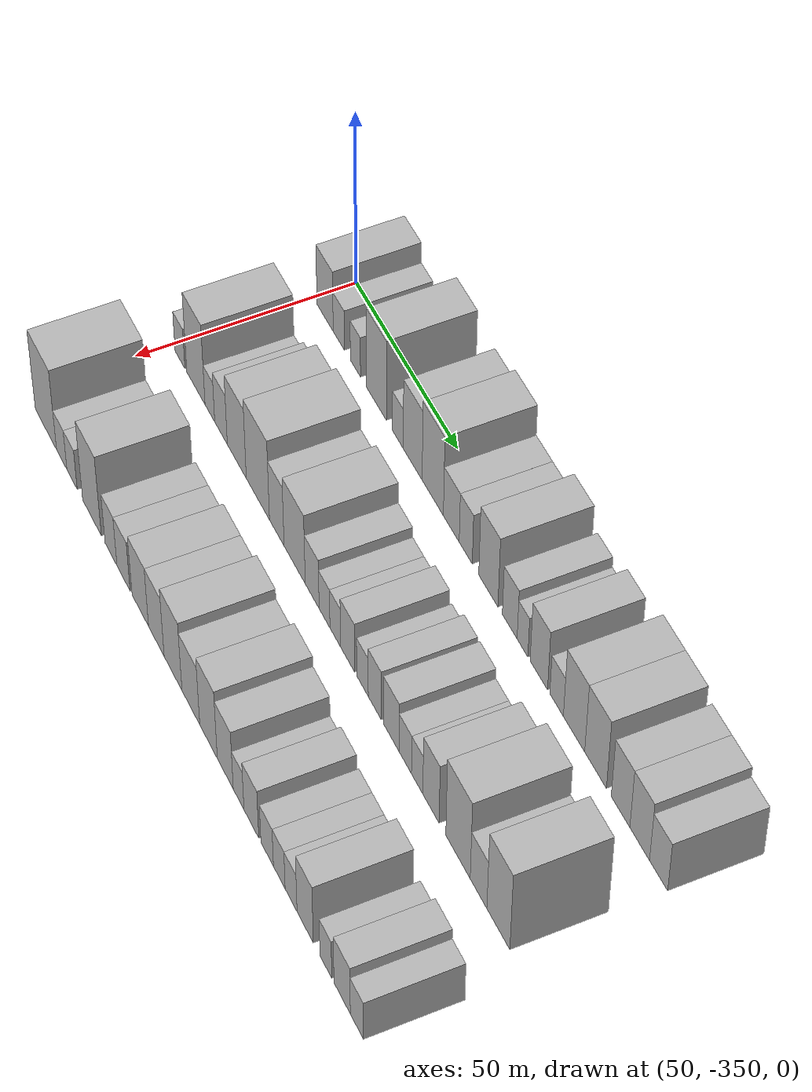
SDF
<sdf version="1.6">
 <world name="default">
  <model name="building_1">
   <static>1</static>
   <pose>50.0000 -343.8013 0 0.000000 0.000000 0.000000</pose>
   <link name="link">
    <pose>0 0 9.00 0 0 0</pose>
    <collision name="collision"><geometry><box><size>20.0000 8.3975 18.0000</size></box></geometry></collision>
    <visual name="visual">
     <cast_shadows>0</cast_shadows>
     <geometry><box><size>20.0000 8.3975 18.0000</size></box></geometry>
     <material>
      <script>
       <uri>model://HANNAS_wall/materials/scripts</uri>
       <uri>model://HANNAS_wall/materials/textures</uri>
       <name>vrc/HANNAS_wall</name>
      </script>
     </material>
    </visual>
   </link>
  </model>
  <model name="building_2">
   <static>1</static>
   <pose>50.0000 -336.7153 0 0.000000 0.000000 0.000000</pose>
   <link name="link">
    <pose>0 0 6.00 0 0 0</pose>
    <collision name="collision"><geometry><box><size>20.0000 5.7745 12.0000</size></box></geometry></collision>
    <visual name="visual">
     <cast_shadows>0</cast_shadows>
     <geometry><box><size>20.0000 5.7745 12.0000</size></box></geometry>
     <material>
      <script>
       <uri>model://HANNAS_wall/materials/scripts</uri>
       <uri>model://HANNAS_wall/materials/textures</uri>
       <name>vrc/HANNAS_wall</name>
      </script>
     </material>
    </visual>
   </link>
  </model>
  <model name="building_3">
   <static>1</static>
   <pose>50.0000 -328.2741 0 0.000000 0.000000 0.000000</pose>
   <link name="link">
    <pose>0 0 6.00 0 0 0</pose>
    <collision name="collision"><geometry><box><size>20.0000 5.1080 12.0000</size></box></geometry></collision>
    <visual name="visual">
     <cast_shadows>0</cast_shadows>
     <geometry><box><size>20.0000 5.1080 12.0000</size></box></geometry>
     <material>
      <script>
       <uri>model://HANNAS_wall/materials/scripts</uri>
       <uri>model://HANNAS_wall/materials/textures</uri>
       <name>vrc/HANNAS_wall</name>
      </script>
     </material>
    </visual>
   </link>
  </model>
  <model name="building_4">
   <static>1</static>
   <pose>50.0000 -317.7666 0 0.000000 0.000000 0.000000</pose>
   <link name="link">
    <pose>0 0 12.00 0 0 0</pose>
    <collision name="collision"><geometry><box><size>20.0000 9.9071 24.0000</size></box></geometry></collision>
    <visual name="visual">
     <cast_shadows>0</cast_shadows>
     <geometry><box><size>20.0000 9.9071 24.0000</size></box></geometry>
     <material>
      <script>
       <uri>model://HANNAS_wall/materials/scripts</uri>
       <uri>model://HANNAS_wall/materials/textures</uri>
       <name>vrc/HANNAS_wall</name>
      </script>
     </material>
    </visual>
   </link>
  </model>
  <model name="building_5">
   <static>1</static>
   <pose>50.0000 -307.1703 0 0.000000 0.000000 0.000000</pose>
   <link name="link">
    <pose>0 0 6.00 0 0 0</pose>
    <collision name="collision"><geometry><box><size>20.0000 5.2854 12.0000</size></box></geometry></collision>
    <visual name="visual">
     <cast_shadows>0</cast_shadows>
     <geometry><box><size>20.0000 5.2854 12.0000</size></box></geometry>
     <material>
      <script>
       <uri>model://HANNAS_wall/materials/scripts</uri>
       <uri>model://HANNAS_wall/materials/textures</uri>
       <name>vrc/HANNAS_wall</name>
      </script>
     </material>
    </visual>
   </link>
  </model>
  <model name="building_6">
   <static>1</static>
   <pose>50.0000 -299.9623 0 0.000000 0.000000 0.000000</pose>
   <link name="link">
    <pose>0 0 10.50 0 0 0</pose>
    <collision name="collision"><geometry><box><size>20.0000 9.1305 21.0000</size></box></geometry></collision>
    <visual name="visual">
     <cast_shadows>0</cast_shadows>
     <geometry><box><size>20.0000 9.1305 21.0000</size></box></geometry>
     <material>
      <script>
       <uri>model://HANNAS_wall/materials/scripts</uri>
       <uri>model://HANNAS_wall/materials/textures</uri>
       <name>vrc/HANNAS_wall</name>
      </script>
     </material>
    </visual>
   </link>
  </model>
  <model name="building_7">
   <static>1</static>
   <pose>50.0000 -290.3193 0 0.000000 0.000000 0.000000</pose>
   <link name="link">
    <pose>0 0 12.00 0 0 0</pose>
    <collision name="collision"><geometry><box><size>20.0000 10.1556 24.0000</size></box></geometry></collision>
    <visual name="visual">
     <cast_shadows>0</cast_shadows>
     <geometry><box><size>20.0000 10.1556 24.0000</size></box></geometry>
     <material>
      <script>
       <uri>model://HANNAS_wall/materials/scripts</uri>
       <uri>model://HANNAS_wall/materials/textures</uri>
       <name>vrc/HANNAS_wall</name>
      </script>
     </material>
    </visual>
   </link>
  </model>
  <model name="building_8">
   <static>1</static>
   <pose>50.0000 -281.5235 0 0.000000 0.000000 0.000000</pose>
   <link name="link">
    <pose>0 0 7.50 0 0 0</pose>
    <collision name="collision"><geometry><box><size>20.0000 7.4361 15.0000</size></box></geometry></collision>
    <visual name="visual">
     <cast_shadows>0</cast_shadows>
     <geometry><box><size>20.0000 7.4361 15.0000</size></box></geometry>
     <material>
      <script>
       <uri>model://HANNAS_wall/materials/scripts</uri>
       <uri>model://HANNAS_wall/materials/textures</uri>
       <name>vrc/HANNAS_wall</name>
      </script>
     </material>
    </visual>
   </link>
  </model>
  <model name="building_9">
   <static>1</static>
   <pose>50.0000 -274.7588 0 0.000000 0.000000 0.000000</pose>
   <link name="link">
    <pose>0 0 7.50 0 0 0</pose>
    <collision name="collision"><geometry><box><size>20.0000 6.0932 15.0000</size></box></geometry></collision>
    <visual name="visual">
     <cast_shadows>0</cast_shadows>
     <geometry><box><size>20.0000 6.0932 15.0000</size></box></geometry>
     <material>
      <script>
       <uri>model://HANNAS_wall/materials/scripts</uri>
       <uri>model://HANNAS_wall/materials/textures</uri>
       <name>vrc/HANNAS_wall</name>
      </script>
     </material>
    </visual>
   </link>
  </model>
  <model name="building_10">
   <static>1</static>
   <pose>50.0000 -264.3083 0 0.000000 0.000000 0.000000</pose>
   <link name="link">
    <pose>0 0 10.50 0 0 0</pose>
    <collision name="collision"><geometry><box><size>20.0000 8.8079 21.0000</size></box></geometry></collision>
    <visual name="visual">
     <cast_shadows>0</cast_shadows>
     <geometry><box><size>20.0000 8.8079 21.0000</size></box></geometry>
     <material>
      <script>
       <uri>model://HANNAS_wall/materials/scripts</uri>
       <uri>model://HANNAS_wall/materials/textures</uri>
       <name>vrc/HANNAS_wall</name>
      </script>
     </material>
    </visual>
   </link>
  </model>
  <model name="building_11">
   <static>1</static>
   <pose>50.0000 -254.5786 0 0.000000 0.000000 0.000000</pose>
   <link name="link">
    <pose>0 0 7.50 0 0 0</pose>
    <collision name="collision"><geometry><box><size>20.0000 6.6515 15.0000</size></box></geometry></collision>
    <visual name="visual">
     <cast_shadows>0</cast_shadows>
     <geometry><box><size>20.0000 6.6515 15.0000</size></box></geometry>
     <material>
      <script>
       <uri>model://HANNAS_wall/materials/scripts</uri>
       <uri>model://HANNAS_wall/materials/textures</uri>
       <name>vrc/HANNAS_wall</name>
      </script>
     </material>
    </visual>
   </link>
  </model>
  <model name="building_12">
   <static>1</static>
   <pose>50.0000 -248.8433 0 0.000000 0.000000 0.000000</pose>
   <link name="link">
    <pose>0 0 6.00 0 0 0</pose>
    <collision name="collision"><geometry><box><size>20.0000 4.8192 12.0000</size></box></geometry></collision>
    <visual name="visual">
     <cast_shadows>0</cast_shadows>
     <geometry><box><size>20.0000 4.8192 12.0000</size></box></geometry>
     <material>
      <script>
       <uri>model://HANNAS_wall/materials/scripts</uri>
       <uri>model://HANNAS_wall/materials/textures</uri>
       <name>vrc/HANNAS_wall</name>
      </script>
     </material>
    </visual>
   </link>
  </model>
  <model name="building_13">
   <static>1</static>
   <pose>50.0000 -241.5795 0 0.000000 0.000000 0.000000</pose>
   <link name="link">
    <pose>0 0 9.00 0 0 0</pose>
    <collision name="collision"><geometry><box><size>20.0000 7.7084 18.0000</size></box></geometry></collision>
    <visual name="visual">
     <cast_shadows>0</cast_shadows>
     <geometry><box><size>20.0000 7.7084 18.0000</size></box></geometry>
     <material>
      <script>
       <uri>model://HANNAS_wall/materials/scripts</uri>
       <uri>model://HANNAS_wall/materials/textures</uri>
       <name>vrc/HANNAS_wall</name>
      </script>
     </material>
    </visual>
   </link>
  </model>
  <model name="building_14">
   <static>1</static>
   <pose>50.0000 -233.7702 0 0.000000 0.000000 0.000000</pose>
   <link name="link">
    <pose>0 0 6.00 0 0 0</pose>
    <collision name="collision"><geometry><box><size>20.0000 5.9101 12.0000</size></box></geometry></collision>
    <visual name="visual">
     <cast_shadows>0</cast_shadows>
     <geometry><box><size>20.0000 5.9101 12.0000</size></box></geometry>
     <material>
      <script>
       <uri>model://HANNAS_wall/materials/scripts</uri>
       <uri>model://HANNAS_wall/materials/textures</uri>
       <name>vrc/HANNAS_wall</name>
      </script>
     </material>
    </visual>
   </link>
  </model>
  <model name="building_15">
   <static>1</static>
   <pose>50.0000 -226.2153 0 0.000000 0.000000 0.000000</pose>
   <link name="link">
    <pose>0 0 10.50 0 0 0</pose>
    <collision name="collision"><geometry><box><size>20.0000 9.1998 21.0000</size></box></geometry></collision>
    <visual name="visual">
     <cast_shadows>0</cast_shadows>
     <geometry><box><size>20.0000 9.1998 21.0000</size></box></geometry>
     <material>
      <script>
       <uri>model://HANNAS_wall/materials/scripts</uri>
       <uri>model://HANNAS_wall/materials/textures</uri>
       <name>vrc/HANNAS_wall</name>
      </script>
     </material>
    </visual>
   </link>
  </model>
  <model name="building_16">
   <static>1</static>
   <pose>50.0000 -216.9937 0 0.000000 0.000000 0.000000</pose>
   <link name="link">
    <pose>0 0 10.50 0 0 0</pose>
    <collision name="collision"><geometry><box><size>20.0000 9.2434 21.0000</size></box></geometry></collision>
    <visual name="visual">
     <cast_shadows>0</cast_shadows>
     <geometry><box><size>20.0000 9.2434 21.0000</size></box></geometry>
     <material>
      <script>
       <uri>model://HANNAS_wall/materials/scripts</uri>
       <uri>model://HANNAS_wall/materials/textures</uri>
       <name>vrc/HANNAS_wall</name>
      </script>
     </material>
    </visual>
   </link>
  </model>
  <model name="building_17">
   <static>1</static>
   <pose>50.0000 -206.4832 0 0.000000 0.000000 0.000000</pose>
   <link name="link">
    <pose>0 0 9.00 0 0 0</pose>
    <collision name="collision"><geometry><box><size>20.0000 7.7774 18.0000</size></box></geometry></collision>
    <visual name="visual">
     <cast_shadows>0</cast_shadows>
     <geometry><box><size>20.0000 7.7774 18.0000</size></box></geometry>
     <material>
      <script>
       <uri>model://HANNAS_wall/materials/scripts</uri>
       <uri>model://HANNAS_wall/materials/textures</uri>
       <name>vrc/HANNAS_wall</name>
      </script>
     </material>
    </visual>
   </link>
  </model>
  <model name="building_18">
   <static>1</static>
   <pose>50.0000 -198.5400 0 0.000000 0.000000 0.000000</pose>
   <link name="link">
    <pose>0 0 9.00 0 0 0</pose>
    <collision name="collision"><geometry><box><size>20.0000 8.1091 18.0000</size></box></geometry></collision>
    <visual name="visual">
     <cast_shadows>0</cast_shadows>
     <geometry><box><size>20.0000 8.1091 18.0000</size></box></geometry>
     <material>
      <script>
       <uri>model://HANNAS_wall/materials/scripts</uri>
       <uri>model://HANNAS_wall/materials/textures</uri>
       <name>vrc/HANNAS_wall</name>
      </script>
     </material>
    </visual>
   </link>
  </model>
  <model name="building_19">
   <static>1</static>
   <pose>50.0000 -190.7908 0 0.000000 0.000000 0.000000</pose>
   <link name="link">
    <pose>0 0 7.50 0 0 0</pose>
    <collision name="collision"><geometry><box><size>20.0000 7.3893 15.0000</size></box></geometry></collision>
    <visual name="visual">
     <cast_shadows>0</cast_shadows>
     <geometry><box><size>20.0000 7.3893 15.0000</size></box></geometry>
     <material>
      <script>
       <uri>model://HANNAS_wall/materials/scripts</uri>
       <uri>model://HANNAS_wall/materials/textures</uri>
       <name>vrc/HANNAS_wall</name>
      </script>
     </material>
    </visual>
   </link>
  </model>
  <model name="building_82">
   <static>1</static>
   <pose>82.0000 -345.3227 0 0.000000 0.000000 0.000000</pose>
   <link name="link">
    <pose>0 0 6.00 0 0 0</pose>
    <collision name="collision"><geometry><box><size>20.0000 5.3546 12.0000</size></box></geometry></collision>
    <visual name="visual">
     <cast_shadows>0</cast_shadows>
     <geometry><box><size>20.0000 5.3546 12.0000</size></box></geometry>
     <material>
      <script>
       <uri>model://HANNAS_wall/materials/scripts</uri>
       <uri>model://HANNAS_wall/materials/textures</uri>
       <name>vrc/HANNAS_wall</name>
      </script>
     </material>
    </visual>
   </link>
  </model>
  <model name="building_83">
   <static>1</static>
   <pose>82.0000 -336.7606 0 0.000000 0.000000 0.000000</pose>
   <link name="link">
    <pose>0 0 12.00 0 0 0</pose>
    <collision name="collision"><geometry><box><size>20.0000 9.7697 24.0000</size></box></geometry></collision>
    <visual name="visual">
     <cast_shadows>0</cast_shadows>
     <geometry><box><size>20.0000 9.7697 24.0000</size></box></geometry>
     <material>
      <script>
       <uri>model://HANNAS_wall/materials/scripts</uri>
       <uri>model://HANNAS_wall/materials/textures</uri>
       <name>vrc/HANNAS_wall</name>
      </script>
     </material>
    </visual>
   </link>
  </model>
  <model name="building_84">
   <static>1</static>
   <pose>82.0000 -329.3207 0 0.000000 0.000000 0.000000</pose>
   <link name="link">
    <pose>0 0 6.00 0 0 0</pose>
    <collision name="collision"><geometry><box><size>20.0000 5.1100 12.0000</size></box></geometry></collision>
    <visual name="visual">
     <cast_shadows>0</cast_shadows>
     <geometry><box><size>20.0000 5.1100 12.0000</size></box></geometry>
     <material>
      <script>
       <uri>model://HANNAS_wall/materials/scripts</uri>
       <uri>model://HANNAS_wall/materials/textures</uri>
       <name>vrc/HANNAS_wall</name>
      </script>
     </material>
    </visual>
   </link>
  </model>
  <model name="building_85">
   <static>1</static>
   <pose>82.0000 -323.4528 0 0.000000 0.000000 0.000000</pose>
   <link name="link">
    <pose>0 0 7.50 0 0 0</pose>
    <collision name="collision"><geometry><box><size>20.0000 6.6260 15.0000</size></box></geometry></collision>
    <visual name="visual">
     <cast_shadows>0</cast_shadows>
     <geometry><box><size>20.0000 6.6260 15.0000</size></box></geometry>
     <material>
      <script>
       <uri>model://HANNAS_wall/materials/scripts</uri>
       <uri>model://HANNAS_wall/materials/textures</uri>
       <name>vrc/HANNAS_wall</name>
      </script>
     </material>
    </visual>
   </link>
  </model>
  <model name="building_86">
   <static>1</static>
   <pose>82.0000 -315.2269 0 0.000000 0.000000 0.000000</pose>
   <link name="link">
    <pose>0 0 10.50 0 0 0</pose>
    <collision name="collision"><geometry><box><size>20.0000 9.8258 21.0000</size></box></geometry></collision>
    <visual name="visual">
     <cast_shadows>0</cast_shadows>
     <geometry><box><size>20.0000 9.8258 21.0000</size></box></geometry>
     <material>
      <script>
       <uri>model://HANNAS_wall/materials/scripts</uri>
       <uri>model://HANNAS_wall/materials/textures</uri>
       <name>vrc/HANNAS_wall</name>
      </script>
     </material>
    </visual>
   </link>
  </model>
  <model name="building_87">
   <static>1</static>
   <pose>82.0000 -304.3934 0 0.000000 0.000000 0.000000</pose>
   <link name="link">
    <pose>0 0 12.00 0 0 0</pose>
    <collision name="collision"><geometry><box><size>20.0000 11.8411 24.0000</size></box></geometry></collision>
    <visual name="visual">
     <cast_shadows>0</cast_shadows>
     <geometry><box><size>20.0000 11.8411 24.0000</size></box></geometry>
     <material>
      <script>
       <uri>model://HANNAS_wall/materials/scripts</uri>
       <uri>model://HANNAS_wall/materials/textures</uri>
       <name>vrc/HANNAS_wall</name>
      </script>
     </material>
    </visual>
   </link>
  </model>
  <model name="building_88">
   <static>1</static>
   <pose>82.0000 -294.8031 0 0.000000 0.000000 0.000000</pose>
   <link name="link">
    <pose>0 0 9.00 0 0 0</pose>
    <collision name="collision"><geometry><box><size>20.0000 7.3395 18.0000</size></box></geometry></collision>
    <visual name="visual">
     <cast_shadows>0</cast_shadows>
     <geometry><box><size>20.0000 7.3395 18.0000</size></box></geometry>
     <material>
      <script>
       <uri>model://HANNAS_wall/materials/scripts</uri>
       <uri>model://HANNAS_wall/materials/textures</uri>
       <name>vrc/HANNAS_wall</name>
      </script>
     </material>
    </visual>
   </link>
  </model>
  <model name="building_89">
   <static>1</static>
   <pose>82.0000 -285.8862 0 0.000000 0.000000 0.000000</pose>
   <link name="link">
    <pose>0 0 10.50 0 0 0</pose>
    <collision name="collision"><geometry><box><size>20.0000 10.4942 21.0000</size></box></geometry></collision>
    <visual name="visual">
     <cast_shadows>0</cast_shadows>
     <geometry><box><size>20.0000 10.4942 21.0000</size></box></geometry>
     <material>
      <script>
       <uri>model://HANNAS_wall/materials/scripts</uri>
       <uri>model://HANNAS_wall/materials/textures</uri>
       <name>vrc/HANNAS_wall</name>
      </script>
     </material>
    </visual>
   </link>
  </model>
  <model name="building_90">
   <static>1</static>
   <pose>82.0000 -277.2489 0 0.000000 0.000000 0.000000</pose>
   <link name="link">
    <pose>0 0 7.50 0 0 0</pose>
    <collision name="collision"><geometry><box><size>20.0000 6.7803 15.0000</size></box></geometry></collision>
    <visual name="visual">
     <cast_shadows>0</cast_shadows>
     <geometry><box><size>20.0000 6.7803 15.0000</size></box></geometry>
     <material>
      <script>
       <uri>model://HANNAS_wall/materials/scripts</uri>
       <uri>model://HANNAS_wall/materials/textures</uri>
       <name>vrc/HANNAS_wall</name>
      </script>
     </material>
    </visual>
   </link>
  </model>
  <model name="building_91">
   <static>1</static>
   <pose>82.0000 -271.2407 0 0.000000 0.000000 0.000000</pose>
   <link name="link">
    <pose>0 0 6.00 0 0 0</pose>
    <collision name="collision"><geometry><box><size>20.0000 5.2361 12.0000</size></box></geometry></collision>
    <visual name="visual">
     <cast_shadows>0</cast_shadows>
     <geometry><box><size>20.0000 5.2361 12.0000</size></box></geometry>
     <material>
      <script>
       <uri>model://HANNAS_wall/materials/scripts</uri>
       <uri>model://HANNAS_wall/materials/textures</uri>
       <name>vrc/HANNAS_wall</name>
      </script>
     </material>
    </visual>
   </link>
  </model>
  <model name="building_92">
   <static>1</static>
   <pose>82.0000 -266.0630 0 0.000000 0.000000 0.000000</pose>
   <link name="link">
    <pose>0 0 6.00 0 0 0</pose>
    <collision name="collision"><geometry><box><size>20.0000 5.1194 12.0000</size></box></geometry></collision>
    <visual name="visual">
     <cast_shadows>0</cast_shadows>
     <geometry><box><size>20.0000 5.1194 12.0000</size></box></geometry>
     <material>
      <script>
       <uri>model://HANNAS_wall/materials/scripts</uri>
       <uri>model://HANNAS_wall/materials/textures</uri>
       <name>vrc/HANNAS_wall</name>
      </script>
     </material>
    </visual>
   </link>
  </model>
  <model name="building_93">
   <static>1</static>
   <pose>82.0000 -260.1692 0 0.000000 0.000000 0.000000</pose>
   <link name="link">
    <pose>0 0 7.50 0 0 0</pose>
    <collision name="collision"><geometry><box><size>20.0000 6.6680 15.0000</size></box></geometry></collision>
    <visual name="visual">
     <cast_shadows>0</cast_shadows>
     <geometry><box><size>20.0000 6.6680 15.0000</size></box></geometry>
     <material>
      <script>
       <uri>model://HANNAS_wall/materials/scripts</uri>
       <uri>model://HANNAS_wall/materials/textures</uri>
       <name>vrc/HANNAS_wall</name>
      </script>
     </material>
    </visual>
   </link>
  </model>
  <model name="building_94">
   <static>1</static>
   <pose>82.0000 -253.1201 0 0.000000 0.000000 0.000000</pose>
   <link name="link">
    <pose>0 0 6.00 0 0 0</pose>
    <collision name="collision"><geometry><box><size>20.0000 5.4303 12.0000</size></box></geometry></collision>
    <visual name="visual">
     <cast_shadows>0</cast_shadows>
     <geometry><box><size>20.0000 5.4303 12.0000</size></box></geometry>
     <material>
      <script>
       <uri>model://HANNAS_wall/materials/scripts</uri>
       <uri>model://HANNAS_wall/materials/textures</uri>
       <name>vrc/HANNAS_wall</name>
      </script>
     </material>
    </visual>
   </link>
  </model>
  <model name="building_95">
   <static>1</static>
   <pose>82.0000 -247.3907 0 0.000000 0.000000 0.000000</pose>
   <link name="link">
    <pose>0 0 7.50 0 0 0</pose>
    <collision name="collision"><geometry><box><size>20.0000 6.0285 15.0000</size></box></geometry></collision>
    <visual name="visual">
     <cast_shadows>0</cast_shadows>
     <geometry><box><size>20.0000 6.0285 15.0000</size></box></geometry>
     <material>
      <script>
       <uri>model://HANNAS_wall/materials/scripts</uri>
       <uri>model://HANNAS_wall/materials/textures</uri>
       <name>vrc/HANNAS_wall</name>
      </script>
     </material>
    </visual>
   </link>
  </model>
  <model name="building_96">
   <static>1</static>
   <pose>82.0000 -239.7840 0 0.000000 0.000000 0.000000</pose>
   <link name="link">
    <pose>0 0 7.50 0 0 0</pose>
    <collision name="collision"><geometry><box><size>20.0000 7.1847 15.0000</size></box></geometry></collision>
    <visual name="visual">
     <cast_shadows>0</cast_shadows>
     <geometry><box><size>20.0000 7.1847 15.0000</size></box></geometry>
     <material>
      <script>
       <uri>model://HANNAS_wall/materials/scripts</uri>
       <uri>model://HANNAS_wall/materials/textures</uri>
       <name>vrc/HANNAS_wall</name>
      </script>
     </material>
    </visual>
   </link>
  </model>
  <model name="building_97">
   <static>1</static>
   <pose>82.0000 -233.3556 0 0.000000 0.000000 0.000000</pose>
   <link name="link">
    <pose>0 0 6.00 0 0 0</pose>
    <collision name="collision"><geometry><box><size>20.0000 5.6721 12.0000</size></box></geometry></collision>
    <visual name="visual">
     <cast_shadows>0</cast_shadows>
     <geometry><box><size>20.0000 5.6721 12.0000</size></box></geometry>
     <material>
      <script>
       <uri>model://HANNAS_wall/materials/scripts</uri>
       <uri>model://HANNAS_wall/materials/textures</uri>
       <name>vrc/HANNAS_wall</name>
      </script>
     </material>
    </visual>
   </link>
  </model>
  <model name="building_98">
   <static>1</static>
   <pose>82.0000 -227.9478 0 0.000000 0.000000 0.000000</pose>
   <link name="link">
    <pose>0 0 6.00 0 0 0</pose>
    <collision name="collision"><geometry><box><size>20.0000 5.1435 12.0000</size></box></geometry></collision>
    <visual name="visual">
     <cast_shadows>0</cast_shadows>
     <geometry><box><size>20.0000 5.1435 12.0000</size></box></geometry>
     <material>
      <script>
       <uri>model://HANNAS_wall/materials/scripts</uri>
       <uri>model://HANNAS_wall/materials/textures</uri>
       <name>vrc/HANNAS_wall</name>
      </script>
     </material>
    </visual>
   </link>
  </model>
  <model name="building_99">
   <static>1</static>
   <pose>82.0000 -221.7524 0 0.000000 0.000000 0.000000</pose>
   <link name="link">
    <pose>0 0 9.00 0 0 0</pose>
    <collision name="collision"><geometry><box><size>20.0000 7.2474 18.0000</size></box></geometry></collision>
    <visual name="visual">
     <cast_shadows>0</cast_shadows>
     <geometry><box><size>20.0000 7.2474 18.0000</size></box></geometry>
     <material>
      <script>
       <uri>model://HANNAS_wall/materials/scripts</uri>
       <uri>model://HANNAS_wall/materials/textures</uri>
       <name>vrc/HANNAS_wall</name>
      </script>
     </material>
    </visual>
   </link>
  </model>
  <model name="building_100">
   <static>1</static>
   <pose>82.0000 -209.7877 0 0.000000 0.000000 0.000000</pose>
   <link name="link">
    <pose>0 0 12.00 0 0 0</pose>
    <collision name="collision"><geometry><box><size>20.0000 10.6819 24.0000</size></box></geometry></collision>
    <visual name="visual">
     <cast_shadows>0</cast_shadows>
     <geometry><box><size>20.0000 10.6819 24.0000</size></box></geometry>
     <material>
      <script>
       <uri>model://HANNAS_wall/materials/scripts</uri>
       <uri>model://HANNAS_wall/materials/textures</uri>
       <name>vrc/HANNAS_wall</name>
      </script>
     </material>
    </visual>
   </link>
  </model>
  <model name="building_101">
   <static>1</static>
   <pose>82.0000 -200.8500 0 0.000000 0.000000 0.000000</pose>
   <link name="link">
    <pose>0 0 7.50 0 0 0</pose>
    <collision name="collision"><geometry><box><size>20.0000 7.1935 15.0000</size></box></geometry></collision>
    <visual name="visual">
     <cast_shadows>0</cast_shadows>
     <geometry><box><size>20.0000 7.1935 15.0000</size></box></geometry>
     <material>
      <script>
       <uri>model://HANNAS_wall/materials/scripts</uri>
       <uri>model://HANNAS_wall/materials/textures</uri>
       <name>vrc/HANNAS_wall</name>
      </script>
     </material>
    </visual>
   </link>
  </model>
  <model name="building_102">
   <static>1</static>
   <pose>82.0000 -192.3553 0 0.000000 0.000000 0.000000</pose>
   <link name="link">
    <pose>0 0 12.00 0 0 0</pose>
    <collision name="collision"><geometry><box><size>20.0000 9.7959 24.0000</size></box></geometry></collision>
    <visual name="visual">
     <cast_shadows>0</cast_shadows>
     <geometry><box><size>20.0000 9.7959 24.0000</size></box></geometry>
     <material>
      <script>
       <uri>model://HANNAS_wall/materials/scripts</uri>
       <uri>model://HANNAS_wall/materials/textures</uri>
       <name>vrc/HANNAS_wall</name>
      </script>
     </material>
    </visual>
   </link>
  </model>
  <model name="building_161">
   <static>1</static>
   <pose>114.0000 -339.0104 0 0.000000 0.000000 0.000000</pose>
   <link name="link">
    <pose>0 0 12.00 0 0 0</pose>
    <collision name="collision"><geometry><box><size>20.0000 11.9792 24.0000</size></box></geometry></collision>
    <visual name="visual">
     <cast_shadows>0</cast_shadows>
     <geometry><box><size>20.0000 11.9792 24.0000</size></box></geometry>
     <material>
      <script>
       <uri>model://HANNAS_wall/materials/scripts</uri>
       <uri>model://HANNAS_wall/materials/textures</uri>
       <name>vrc/HANNAS_wall</name>
      </script>
     </material>
    </visual>
   </link>
  </model>
  <model name="building_162">
   <static>1</static>
   <pose>114.0000 -330.1432 0 0.000000 0.000000 0.000000</pose>
   <link name="link">
    <pose>0 0 6.00 0 0 0</pose>
    <collision name="collision"><geometry><box><size>20.0000 5.7553 12.0000</size></box></geometry></collision>
    <visual name="visual">
     <cast_shadows>0</cast_shadows>
     <geometry><box><size>20.0000 5.7553 12.0000</size></box></geometry>
     <material>
      <script>
       <uri>model://HANNAS_wall/materials/scripts</uri>
       <uri>model://HANNAS_wall/materials/textures</uri>
       <name>vrc/HANNAS_wall</name>
      </script>
     </material>
    </visual>
   </link>
  </model>
  <model name="building_163">
   <static>1</static>
   <pose>114.0000 -324.4144 0 0.000000 0.000000 0.000000</pose>
   <link name="link">
    <pose>0 0 6.00 0 0 0</pose>
    <collision name="collision"><geometry><box><size>20.0000 5.7023 12.0000</size></box></geometry></collision>
    <visual name="visual">
     <cast_shadows>0</cast_shadows>
     <geometry><box><size>20.0000 5.7023 12.0000</size></box></geometry>
     <material>
      <script>
       <uri>model://HANNAS_wall/materials/scripts</uri>
       <uri>model://HANNAS_wall/materials/textures</uri>
       <name>vrc/HANNAS_wall</name>
      </script>
     </material>
    </visual>
   </link>
  </model>
  <model name="building_164">
   <static>1</static>
   <pose>114.0000 -313.4853 0 0.000000 0.000000 0.000000</pose>
   <link name="link">
    <pose>0 0 12.00 0 0 0</pose>
    <collision name="collision"><geometry><box><size>20.0000 10.1558 24.0000</size></box></geometry></collision>
    <visual name="visual">
     <cast_shadows>0</cast_shadows>
     <geometry><box><size>20.0000 10.1558 24.0000</size></box></geometry>
     <material>
      <script>
       <uri>model://HANNAS_wall/materials/scripts</uri>
       <uri>model://HANNAS_wall/materials/textures</uri>
       <name>vrc/HANNAS_wall</name>
      </script>
     </material>
    </visual>
   </link>
  </model>
  <model name="building_165">
   <static>1</static>
   <pose>114.0000 -303.2273 0 0.000000 0.000000 0.000000</pose>
   <link name="link">
    <pose>0 0 7.50 0 0 0</pose>
    <collision name="collision"><geometry><box><size>20.0000 6.3604 15.0000</size></box></geometry></collision>
    <visual name="visual">
     <cast_shadows>0</cast_shadows>
     <geometry><box><size>20.0000 6.3604 15.0000</size></box></geometry>
     <material>
      <script>
       <uri>model://HANNAS_wall/materials/scripts</uri>
       <uri>model://HANNAS_wall/materials/textures</uri>
       <name>vrc/HANNAS_wall</name>
      </script>
     </material>
    </visual>
   </link>
  </model>
  <model name="building_166">
   <static>1</static>
   <pose>114.0000 -296.5613 0 0.000000 0.000000 0.000000</pose>
   <link name="link">
    <pose>0 0 7.50 0 0 0</pose>
    <collision name="collision"><geometry><box><size>20.0000 6.9714 15.0000</size></box></geometry></collision>
    <visual name="visual">
     <cast_shadows>0</cast_shadows>
     <geometry><box><size>20.0000 6.9714 15.0000</size></box></geometry>
     <material>
      <script>
       <uri>model://HANNAS_wall/materials/scripts</uri>
       <uri>model://HANNAS_wall/materials/textures</uri>
       <name>vrc/HANNAS_wall</name>
      </script>
     </material>
    </visual>
   </link>
  </model>
  <model name="building_167">
   <static>1</static>
   <pose>114.0000 -287.7713 0 0.000000 0.000000 0.000000</pose>
   <link name="link">
    <pose>0 0 9.00 0 0 0</pose>
    <collision name="collision"><geometry><box><size>20.0000 8.6086 18.0000</size></box></geometry></collision>
    <visual name="visual">
     <cast_shadows>0</cast_shadows>
     <geometry><box><size>20.0000 8.6086 18.0000</size></box></geometry>
     <material>
      <script>
       <uri>model://HANNAS_wall/materials/scripts</uri>
       <uri>model://HANNAS_wall/materials/textures</uri>
       <name>vrc/HANNAS_wall</name>
      </script>
     </material>
    </visual>
   </link>
  </model>
  <model name="building_168">
   <static>1</static>
   <pose>114.0000 -279.4476 0 0.000000 0.000000 0.000000</pose>
   <link name="link">
    <pose>0 0 9.00 0 0 0</pose>
    <collision name="collision"><geometry><box><size>20.0000 8.0388 18.0000</size></box></geometry></collision>
    <visual name="visual">
     <cast_shadows>0</cast_shadows>
     <geometry><box><size>20.0000 8.0388 18.0000</size></box></geometry>
     <material>
      <script>
       <uri>model://HANNAS_wall/materials/scripts</uri>
       <uri>model://HANNAS_wall/materials/textures</uri>
       <name>vrc/HANNAS_wall</name>
      </script>
     </material>
    </visual>
   </link>
  </model>
  <model name="building_169">
   <static>1</static>
   <pose>114.0000 -270.8900 0 0.000000 0.000000 0.000000</pose>
   <link name="link">
    <pose>0 0 10.50 0 0 0</pose>
    <collision name="collision"><geometry><box><size>20.0000 9.0764 21.0000</size></box></geometry></collision>
    <visual name="visual">
     <cast_shadows>0</cast_shadows>
     <geometry><box><size>20.0000 9.0764 21.0000</size></box></geometry>
     <material>
      <script>
       <uri>model://HANNAS_wall/materials/scripts</uri>
       <uri>model://HANNAS_wall/materials/textures</uri>
       <name>vrc/HANNAS_wall</name>
      </script>
     </material>
    </visual>
   </link>
  </model>
  <model name="building_170">
   <static>1</static>
   <pose>114.0000 -261.9017 0 0.000000 0.000000 0.000000</pose>
   <link name="link">
    <pose>0 0 9.00 0 0 0</pose>
    <collision name="collision"><geometry><box><size>20.0000 8.9003 18.0000</size></box></geometry></collision>
    <visual name="visual">
     <cast_shadows>0</cast_shadows>
     <geometry><box><size>20.0000 8.9003 18.0000</size></box></geometry>
     <material>
      <script>
       <uri>model://HANNAS_wall/materials/scripts</uri>
       <uri>model://HANNAS_wall/materials/textures</uri>
       <name>vrc/HANNAS_wall</name>
      </script>
     </material>
    </visual>
   </link>
  </model>
  <model name="building_171">
   <static>1</static>
   <pose>114.0000 -253.1226 0 0.000000 0.000000 0.000000</pose>
   <link name="link">
    <pose>0 0 10.50 0 0 0</pose>
    <collision name="collision"><geometry><box><size>20.0000 8.6580 21.0000</size></box></geometry></collision>
    <visual name="visual">
     <cast_shadows>0</cast_shadows>
     <geometry><box><size>20.0000 8.6580 21.0000</size></box></geometry>
     <material>
      <script>
       <uri>model://HANNAS_wall/materials/scripts</uri>
       <uri>model://HANNAS_wall/materials/textures</uri>
       <name>vrc/HANNAS_wall</name>
      </script>
     </material>
    </visual>
   </link>
  </model>
  <model name="building_172">
   <static>1</static>
   <pose>114.0000 -244.9130 0 0.000000 0.000000 0.000000</pose>
   <link name="link">
    <pose>0 0 9.00 0 0 0</pose>
    <collision name="collision"><geometry><box><size>20.0000 7.7612 18.0000</size></box></geometry></collision>
    <visual name="visual">
     <cast_shadows>0</cast_shadows>
     <geometry><box><size>20.0000 7.7612 18.0000</size></box></geometry>
     <material>
      <script>
       <uri>model://HANNAS_wall/materials/scripts</uri>
       <uri>model://HANNAS_wall/materials/textures</uri>
       <name>vrc/HANNAS_wall</name>
      </script>
     </material>
    </visual>
   </link>
  </model>
  <model name="building_173">
   <static>1</static>
   <pose>114.0000 -238.4507 0 0.000000 0.000000 0.000000</pose>
   <link name="link">
    <pose>0 0 6.00 0 0 0</pose>
    <collision name="collision"><geometry><box><size>20.0000 5.1633 12.0000</size></box></geometry></collision>
    <visual name="visual">
     <cast_shadows>0</cast_shadows>
     <geometry><box><size>20.0000 5.1633 12.0000</size></box></geometry>
     <material>
      <script>
       <uri>model://HANNAS_wall/materials/scripts</uri>
       <uri>model://HANNAS_wall/materials/textures</uri>
       <name>vrc/HANNAS_wall</name>
      </script>
     </material>
    </visual>
   </link>
  </model>
  <model name="building_174">
   <static>1</static>
   <pose>114.0000 -232.3324 0 0.000000 0.000000 0.000000</pose>
   <link name="link">
    <pose>0 0 7.50 0 0 0</pose>
    <collision name="collision"><geometry><box><size>20.0000 7.0733 15.0000</size></box></geometry></collision>
    <visual name="visual">
     <cast_shadows>0</cast_shadows>
     <geometry><box><size>20.0000 7.0733 15.0000</size></box></geometry>
     <material>
      <script>
       <uri>model://HANNAS_wall/materials/scripts</uri>
       <uri>model://HANNAS_wall/materials/textures</uri>
       <name>vrc/HANNAS_wall</name>
      </script>
     </material>
    </visual>
   </link>
  </model>
  <model name="building_175">
   <static>1</static>
   <pose>114.0000 -224.8446 0 0.000000 0.000000 0.000000</pose>
   <link name="link">
    <pose>0 0 6.00 0 0 0</pose>
    <collision name="collision"><geometry><box><size>20.0000 5.9023 12.0000</size></box></geometry></collision>
    <visual name="visual">
     <cast_shadows>0</cast_shadows>
     <geometry><box><size>20.0000 5.9023 12.0000</size></box></geometry>
     <material>
      <script>
       <uri>model://HANNAS_wall/materials/scripts</uri>
       <uri>model://HANNAS_wall/materials/textures</uri>
       <name>vrc/HANNAS_wall</name>
      </script>
     </material>
    </visual>
   </link>
  </model>
  <model name="building_176">
   <static>1</static>
   <pose>114.0000 -219.1669 0 0.000000 0.000000 0.000000</pose>
   <link name="link">
    <pose>0 0 6.00 0 0 0</pose>
    <collision name="collision"><geometry><box><size>20.0000 5.4531 12.0000</size></box></geometry></collision>
    <visual name="visual">
     <cast_shadows>0</cast_shadows>
     <geometry><box><size>20.0000 5.4531 12.0000</size></box></geometry>
     <material>
      <script>
       <uri>model://HANNAS_wall/materials/scripts</uri>
       <uri>model://HANNAS_wall/materials/textures</uri>
       <name>vrc/HANNAS_wall</name>
      </script>
     </material>
    </visual>
   </link>
  </model>
  <model name="building_177">
   <static>1</static>
   <pose>114.0000 -213.6853 0 0.000000 0.000000 0.000000</pose>
   <link name="link">
    <pose>0 0 6.00 0 0 0</pose>
    <collision name="collision"><geometry><box><size>20.0000 5.5102 12.0000</size></box></geometry></collision>
    <visual name="visual">
     <cast_shadows>0</cast_shadows>
     <geometry><box><size>20.0000 5.5102 12.0000</size></box></geometry>
     <material>
      <script>
       <uri>model://HANNAS_wall/materials/scripts</uri>
       <uri>model://HANNAS_wall/materials/textures</uri>
       <name>vrc/HANNAS_wall</name>
      </script>
     </material>
    </visual>
   </link>
  </model>
  <model name="building_178">
   <static>1</static>
   <pose>114.0000 -207.2071 0 0.000000 0.000000 0.000000</pose>
   <link name="link">
    <pose>0 0 9.00 0 0 0</pose>
    <collision name="collision"><geometry><box><size>20.0000 7.4461 18.0000</size></box></geometry></collision>
    <visual name="visual">
     <cast_shadows>0</cast_shadows>
     <geometry><box><size>20.0000 7.4461 18.0000</size></box></geometry>
     <material>
      <script>
       <uri>model://HANNAS_wall/materials/scripts</uri>
       <uri>model://HANNAS_wall/materials/textures</uri>
       <name>vrc/HANNAS_wall</name>
      </script>
     </material>
    </visual>
   </link>
  </model>
  <model name="building_179">
   <static>1</static>
   <pose>114.0000 -197.8190 0 0.000000 0.000000 0.000000</pose>
   <link name="link">
    <pose>0 0 6.00 0 0 0</pose>
    <collision name="collision"><geometry><box><size>20.0000 5.3301 12.0000</size></box></geometry></collision>
    <visual name="visual">
     <cast_shadows>0</cast_shadows>
     <geometry><box><size>20.0000 5.3301 12.0000</size></box></geometry>
     <material>
      <script>
       <uri>model://HANNAS_wall/materials/scripts</uri>
       <uri>model://HANNAS_wall/materials/textures</uri>
       <name>vrc/HANNAS_wall</name>
      </script>
     </material>
    </visual>
   </link>
  </model>
  <model name="building_180">
   <static>1</static>
   <pose>114.0000 -190.5244 0 0.000000 0.000000 0.000000</pose>
   <link name="link">
    <pose>0 0 7.50 0 0 0</pose>
    <collision name="collision"><geometry><box><size>20.0000 7.2590 15.0000</size></box></geometry></collision>
    <visual name="visual">
     <cast_shadows>0</cast_shadows>
     <geometry><box><size>20.0000 7.2590 15.0000</size></box></geometry>
     <material>
      <script>
       <uri>model://HANNAS_wall/materials/scripts</uri>
       <uri>model://HANNAS_wall/materials/textures</uri>
       <name>vrc/HANNAS_wall</name>
      </script>
     </material>
    </visual>
   </link>
  </model>
  <model name="building_181">
   <static>1</static>
   <pose>114.0000 -183.9991 0 0.000000 0.000000 0.000000</pose>
   <link name="link">
    <pose>0 0 6.00 0 0 0</pose>
    <collision name="collision"><geometry><box><size>20.0000 5.7916 12.0000</size></box></geometry></collision>
    <visual name="visual">
     <cast_shadows>0</cast_shadows>
     <geometry><box><size>20.0000 5.7916 12.0000</size></box></geometry>
     <material>
      <script>
       <uri>model://HANNAS_wall/materials/scripts</uri>
       <uri>model://HANNAS_wall/materials/textures</uri>
       <name>vrc/HANNAS_wall</name>
      </script>
     </material>
    </visual>
   </link>
  </model>
 </world>
</sdf>
